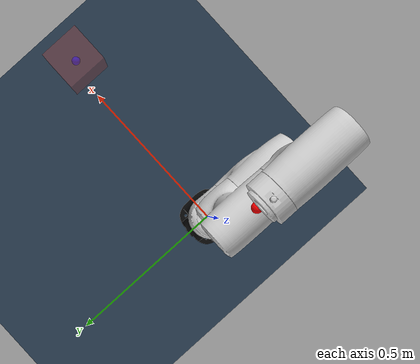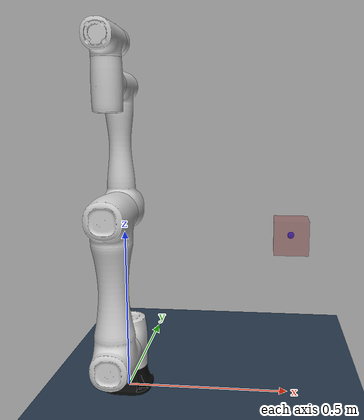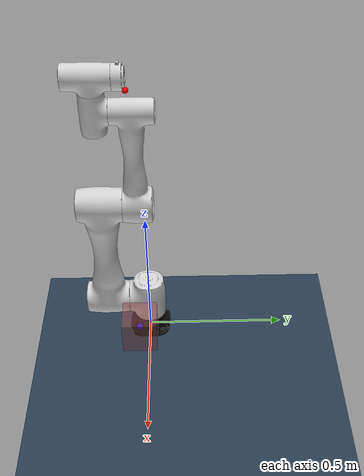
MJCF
<mujoco model="cr5 scene">
  <include file="cr5_robot2.xml"/>

  <statistic center="0.3 0 0.3" extent="0.8"/>

  <visual>
    <headlight diffuse="0.6 0.6 0.6" ambient="0.1 0.1 0.1" specular="0 0 0"/>
    <global azimuth="120" elevation="-20"/>
  </visual>

  <asset>
    <texture name="grid" type="2d" builtin="checker" rgb1=".2 .3 .4" rgb2=".1 0.15 0.2" width="512" height="512"
      mark="cross" markrgb=".8 .8 .8"/>
    <material name="grid" texture="grid" texrepeat="1 1" texuniform="true"/>
  </asset>

  <worldbody>
   <light pos="0 0 1.5" dir="0 0 -1" directional="true"/>
    <geom name="floor" size="1 1 0.01" type="plane" material="grid"/>
    <body name="target" pos="0.5 0 .5" quat="0 1 0 0" mocap="true">
    <geom type="box" size=".05 .05 .05" contype="0" conaffinity="0" rgba=".6 .3 .3 .5"/>
    <site type="sphere" size="0.01" rgba="0 0 1 1" group="1"/>
    </body>
  </worldbody>
</mujoco>

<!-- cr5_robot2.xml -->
<mujoco model="cr5_robot">
    <compiler angle="radian" meshdir="assets" autolimits="true" />

    <option integrator="implicitfast" />

    <default>
        <default class="cr5_robot">
            <default class="visual">
                <geom type="mesh" contype="0" conaffinity="0" group="2" />
            </default>
            <default class="collision">
                <geom type="capsule" group="3" />
                <default class="eef_collision">
                    <geom type="cylinder" />
                </default>
            </default>
            <joint axis="0 0 1" range="-6.28319 6.28319" damping="1" stiffness="0" />
            <default class="joint_limited">
                <joint range="-3.1415 3.1415" />
            </default>
            <default class="position">
                <position ctrlrange="-6.2831 6.2831" kp="2000" kv="200" forcerange="-150 150" />
                <default class="position_limited">
                    <position ctrlrange="-6.1415 6.1415" />
                </default>
                <default class="position_small">
                    <position kp="500" kv="50" forcerange="-28 28" />
                </default>
            </default>
        </default>
    </default>

    <asset>
        <!-- Define materials -->
        <material name="black" rgba="0.033 0.033 0.033 1" />
        <material name="jointgray" rgba="0.278 0.278 0.278 1" />
        <material name="linkgray" rgba="0.82 0.82 0.82 1" />
        <material name="cr5blue" rgba="0.49 0.678 0.8 1" />

        <!-- Define meshes -->
        <mesh name="base_link" file="base_link.stl" />
        <mesh name="Link1" file="Link1.stl" />
        <mesh name="Link2" file="Link2.stl" />
        <mesh name="Link3" file="Link3.stl" />
        <mesh name="Link4" file="Link4.stl" />
        <mesh name="Link5" file="Link5.stl" />
        <mesh name="Link6" file="Link6.stl" />
    </asset>

    <worldbody>
        <body name="base_link" childclass="cr5_robot">
            <geom type="mesh" mesh="base_link" material="black" class="visual" />
            <body name="Link1" pos="0 0 0.147">
                <inertial pos="-8.7268e-07 -0.0032576 -0.0076748" mass="1.6123" diaginertia="0.0029122 0.0028191 0.0032836" />
                <joint name="joint1" axis="0 0 1" class="joint_limited" />
                <geom type="mesh" mesh="Link1" material="linkgray" class="visual" />
                <!-- Add collision geometry if needed -->
                <body name="Link2" pos="0 0 0" quat="0.5 0.5 0.5 -0.5">
                    <inertial pos="-0.21351 0 0.14252" mass="5.5186" diaginertia="0.0085919 0.027553 0.028294" />
                    <joint name="joint2" axis="0 0 1" class="joint_limited" />
                    <geom type="mesh" mesh="Link2" material="linkgray" class="visual" />
                    <body name="Link3" pos="-0.427 0 0">
                        <inertial pos="-0.15231 0 0.022693" mass="2.8536" diaginertia="0.0032608 0.0092967 0.0095552" />
                        <joint name="joint3" axis="0 0 1" class="joint_limited" />
                        <geom type="mesh" mesh="Link3" material="linkgray" class="visual" />
                        <body name="Link4" pos="-0.357 0 0.141" quat="0.7071 0 0 -0.7071">
                            <inertial pos="0 -0.002077 -0.0015548" mass="0.67058" diaginertia="0.00066939 0.00065424 0.00065365" />
                            <joint name="joint4" axis="0 0 1" class="joint_limited" />
                            <geom type="mesh" mesh="Link4" material="linkgray" class="visual" />
                            <body name="Link5" pos="0 -0.116 0" quat="0 0 -0.7071 0.7071 ">
                                <inertial pos="0 -0.0045777 -0.0012971" mass="0.7269" diaginertia="0.00073069 0.00071195 0.00071391" />
                                <joint name="joint5" axis="0 0 1" class="joint_limited" />
                                <geom type="mesh" mesh="Link5" material="linkgray" class="visual" />
                                <body name="Link6" pos="0 0.105 0" quat="0.7071 -0.7071 0 0">
                                    <inertial pos="0 9.3774e-05 -0.019285" mass="0.15789" diaginertia="7.8045e-05 7.9168e-05 0.00012951" />
                                    <joint name="joint6" axis="0 0 1" class="joint_limited" />
                                    <geom type="mesh" mesh="Link6" material="linkgray" class="visual" />
                                    <body name="attachment" pos="0 0.045 0">
                                        <site name="attachment_site" pos="0 0 0" size="0.01" rgba="1 0 0 1" />
                                    </body>
                                </body>
                            </body>
                        </body>
                    </body>
                </body>
            </body>
        </body>
    </worldbody>

    <actuator>
        <position class="position" name="joint1" joint="joint1" />
        <position class="position" name="joint2" joint="joint2" />
        <position class="position" name="joint3" joint="joint3" />
        <position class="position" name="joint4" joint="joint4" />
        <position class="position" name="joint5" joint="joint5" />
        <position class="position" name="joint6" joint="joint6" />
    </actuator>

    <keyframe>
        <key name="home" qpos="1 1.4 0 0 0 0" ctrl="1 1.4 -1.4 1.4 -1.4 1.4" />
    </keyframe>
</mujoco>
